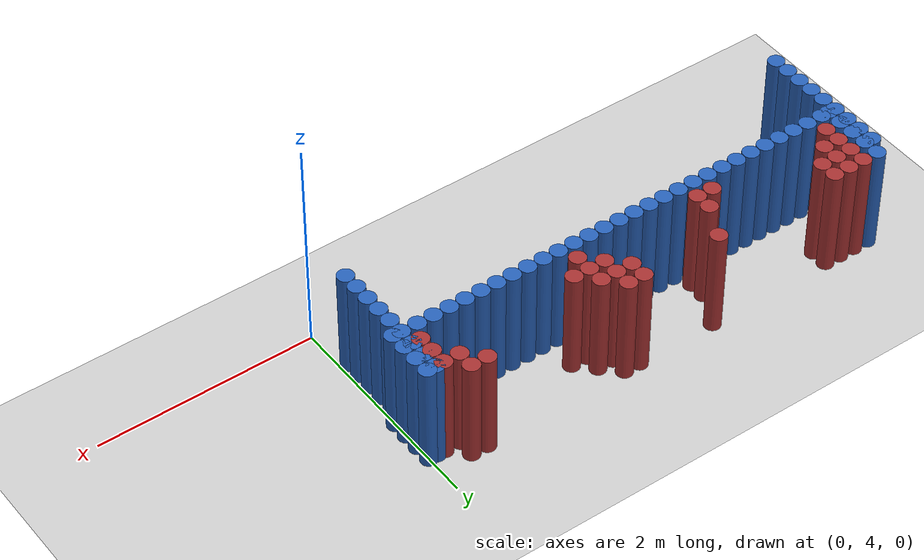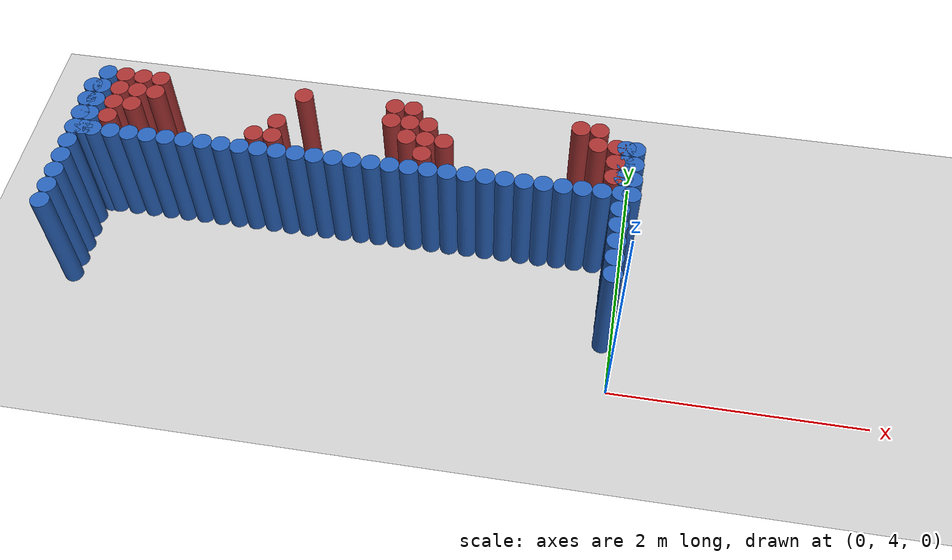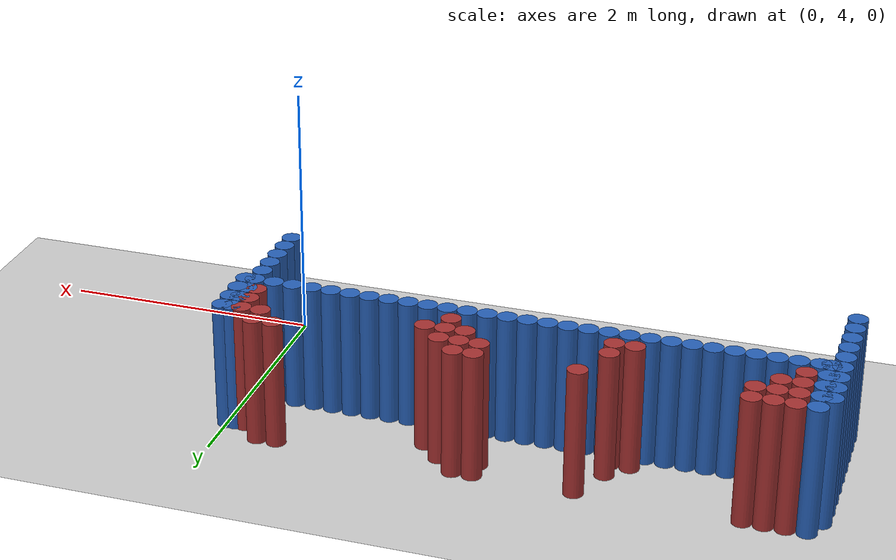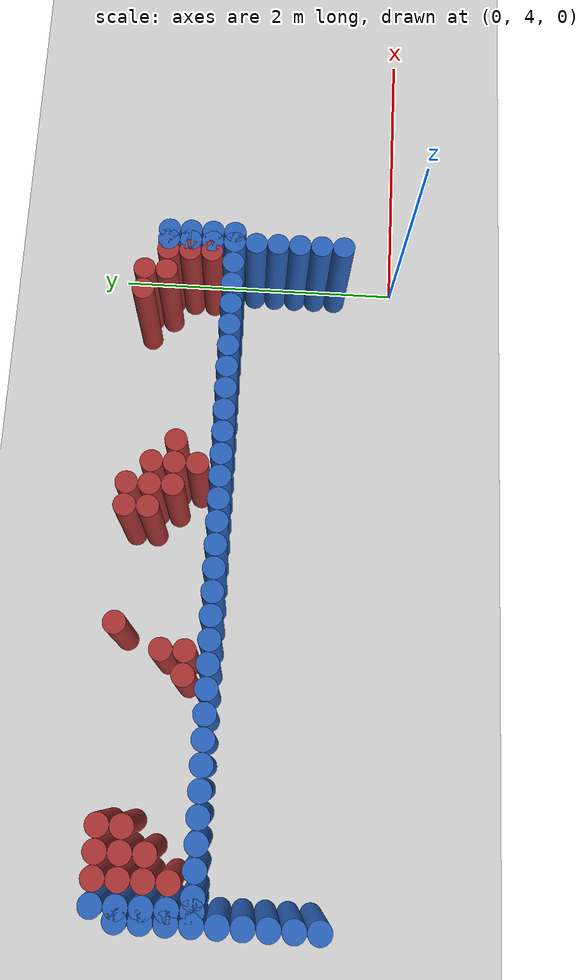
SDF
<sdf version="1.6">
 <world name="barn_world">
  <model name="ground_plane">
   <static>1</static>
   <link name="link">
    <collision name="collision">
     <geometry><plane><normal>0 0 1</normal><size>100 100</size></plane></geometry>
    </collision>
    <visual name="visual">
     <geometry><plane><normal>0 0 1</normal><size>100 100</size></plane></geometry>
     <material>
      <script><uri>file://media/materials/scripts/gazebo.material</uri><name>Gazebo/Grey</name></script>
     </material>
    </visual>
   </link>
  </model>
  <model name="unit_cylinder_86">
   <static>1</static>
   <pose>-0.0750 4.4250 0.5 0 0 0</pose>
   <link name="link">
    <collision name="collision">
     <geometry><cylinder><radius>0.075</radius><length>1</length></cylinder></geometry>
    </collision>
    <visual name="visual">
     <geometry><cylinder><radius>0.075</radius><length>1</length></cylinder></geometry>
     <material><ambient>0.152 0.379 0.72 1</ambient><diffuse>0.152 0.379 0.72 1</diffuse></material>
    </visual>
   </link>
  </model>
  <model name="unit_cylinder_87">
   <static>1</static>
   <pose>-4.4250 4.4250 0.5 0 0 0</pose>
   <link name="link">
    <collision name="collision">
     <geometry><cylinder><radius>0.075</radius><length>1</length></cylinder></geometry>
    </collision>
    <visual name="visual">
     <geometry><cylinder><radius>0.075</radius><length>1</length></cylinder></geometry>
     <material><ambient>0.152 0.379 0.72 1</ambient><diffuse>0.152 0.379 0.72 1</diffuse></material>
    </visual>
   </link>
  </model>
  <model name="unit_cylinder_88">
   <static>1</static>
   <pose>-0.0750 4.5750 0.5 0 0 0</pose>
   <link name="link">
    <collision name="collision">
     <geometry><cylinder><radius>0.075</radius><length>1</length></cylinder></geometry>
    </collision>
    <visual name="visual">
     <geometry><cylinder><radius>0.075</radius><length>1</length></cylinder></geometry>
     <material><ambient>0.152 0.379 0.72 1</ambient><diffuse>0.152 0.379 0.72 1</diffuse></material>
    </visual>
   </link>
  </model>
  <model name="unit_cylinder_89">
   <static>1</static>
   <pose>-4.4250 4.5750 0.5 0 0 0</pose>
   <link name="link">
    <collision name="collision">
     <geometry><cylinder><radius>0.075</radius><length>1</length></cylinder></geometry>
    </collision>
    <visual name="visual">
     <geometry><cylinder><radius>0.075</radius><length>1</length></cylinder></geometry>
     <material><ambient>0.152 0.379 0.72 1</ambient><diffuse>0.152 0.379 0.72 1</diffuse></material>
    </visual>
   </link>
  </model>
  <model name="unit_cylinder_90">
   <static>1</static>
   <pose>-0.0750 4.7250 0.5 0 0 0</pose>
   <link name="link">
    <collision name="collision">
     <geometry><cylinder><radius>0.075</radius><length>1</length></cylinder></geometry>
    </collision>
    <visual name="visual">
     <geometry><cylinder><radius>0.075</radius><length>1</length></cylinder></geometry>
     <material><ambient>0.152 0.379 0.72 1</ambient><diffuse>0.152 0.379 0.72 1</diffuse></material>
    </visual>
   </link>
  </model>
  <model name="unit_cylinder_91">
   <static>1</static>
   <pose>-4.4250 4.7250 0.5 0 0 0</pose>
   <link name="link">
    <collision name="collision">
     <geometry><cylinder><radius>0.075</radius><length>1</length></cylinder></geometry>
    </collision>
    <visual name="visual">
     <geometry><cylinder><radius>0.075</radius><length>1</length></cylinder></geometry>
     <material><ambient>0.152 0.379 0.72 1</ambient><diffuse>0.152 0.379 0.72 1</diffuse></material>
    </visual>
   </link>
  </model>
  <model name="unit_cylinder_92">
   <static>1</static>
   <pose>-0.0750 4.8750 0.5 0 0 0</pose>
   <link name="link">
    <collision name="collision">
     <geometry><cylinder><radius>0.075</radius><length>1</length></cylinder></geometry>
    </collision>
    <visual name="visual">
     <geometry><cylinder><radius>0.075</radius><length>1</length></cylinder></geometry>
     <material><ambient>0.152 0.379 0.72 1</ambient><diffuse>0.152 0.379 0.72 1</diffuse></material>
    </visual>
   </link>
  </model>
  <model name="unit_cylinder_93">
   <static>1</static>
   <pose>-4.4250 4.8750 0.5 0 0 0</pose>
   <link name="link">
    <collision name="collision">
     <geometry><cylinder><radius>0.075</radius><length>1</length></cylinder></geometry>
    </collision>
    <visual name="visual">
     <geometry><cylinder><radius>0.075</radius><length>1</length></cylinder></geometry>
     <material><ambient>0.152 0.379 0.72 1</ambient><diffuse>0.152 0.379 0.72 1</diffuse></material>
    </visual>
   </link>
  </model>
  <model name="unit_cylinder_94">
   <static>1</static>
   <pose>-0.0750 5.0250 0.5 0 0 0</pose>
   <link name="link">
    <collision name="collision">
     <geometry><cylinder><radius>0.075</radius><length>1</length></cylinder></geometry>
    </collision>
    <visual name="visual">
     <geometry><cylinder><radius>0.075</radius><length>1</length></cylinder></geometry>
     <material><ambient>0.152 0.379 0.72 1</ambient><diffuse>0.152 0.379 0.72 1</diffuse></material>
    </visual>
   </link>
  </model>
  <model name="unit_cylinder_95">
   <static>1</static>
   <pose>-4.4250 5.0250 0.5 0 0 0</pose>
   <link name="link">
    <collision name="collision">
     <geometry><cylinder><radius>0.075</radius><length>1</length></cylinder></geometry>
    </collision>
    <visual name="visual">
     <geometry><cylinder><radius>0.075</radius><length>1</length></cylinder></geometry>
     <material><ambient>0.152 0.379 0.72 1</ambient><diffuse>0.152 0.379 0.72 1</diffuse></material>
    </visual>
   </link>
  </model>
  <model name="unit_cylinder_96">
   <static>1</static>
   <pose>-0.0750 5.1750 0.5 0 0 0</pose>
   <link name="link">
    <collision name="collision">
     <geometry><cylinder><radius>0.075</radius><length>1</length></cylinder></geometry>
    </collision>
    <visual name="visual">
     <geometry><cylinder><radius>0.075</radius><length>1</length></cylinder></geometry>
     <material><ambient>0.152 0.379 0.72 1</ambient><diffuse>0.152 0.379 0.72 1</diffuse></material>
    </visual>
   </link>
  </model>
  <model name="unit_cylinder_97">
   <static>1</static>
   <pose>-0.2250 5.1750 0.5 0 0 0</pose>
   <link name="link">
    <collision name="collision">
     <geometry><cylinder><radius>0.075</radius><length>1</length></cylinder></geometry>
    </collision>
    <visual name="visual">
     <geometry><cylinder><radius>0.075</radius><length>1</length></cylinder></geometry>
     <material><ambient>0.152 0.379 0.72 1</ambient><diffuse>0.152 0.379 0.72 1</diffuse></material>
    </visual>
   </link>
  </model>
  <model name="unit_cylinder_98">
   <static>1</static>
   <pose>-0.3750 5.1750 0.5 0 0 0</pose>
   <link name="link">
    <collision name="collision">
     <geometry><cylinder><radius>0.075</radius><length>1</length></cylinder></geometry>
    </collision>
    <visual name="visual">
     <geometry><cylinder><radius>0.075</radius><length>1</length></cylinder></geometry>
     <material><ambient>0.152 0.379 0.72 1</ambient><diffuse>0.152 0.379 0.72 1</diffuse></material>
    </visual>
   </link>
  </model>
  <model name="unit_cylinder_99">
   <static>1</static>
   <pose>-0.5250 5.1750 0.5 0 0 0</pose>
   <link name="link">
    <collision name="collision">
     <geometry><cylinder><radius>0.075</radius><length>1</length></cylinder></geometry>
    </collision>
    <visual name="visual">
     <geometry><cylinder><radius>0.075</radius><length>1</length></cylinder></geometry>
     <material><ambient>0.152 0.379 0.72 1</ambient><diffuse>0.152 0.379 0.72 1</diffuse></material>
    </visual>
   </link>
  </model>
  <model name="unit_cylinder_100">
   <static>1</static>
   <pose>-0.6750 5.1750 0.5 0 0 0</pose>
   <link name="link">
    <collision name="collision">
     <geometry><cylinder><radius>0.075</radius><length>1</length></cylinder></geometry>
    </collision>
    <visual name="visual">
     <geometry><cylinder><radius>0.075</radius><length>1</length></cylinder></geometry>
     <material><ambient>0.152 0.379 0.72 1</ambient><diffuse>0.152 0.379 0.72 1</diffuse></material>
    </visual>
   </link>
  </model>
  <model name="unit_cylinder_101">
   <static>1</static>
   <pose>-0.8250 5.1750 0.5 0 0 0</pose>
   <link name="link">
    <collision name="collision">
     <geometry><cylinder><radius>0.075</radius><length>1</length></cylinder></geometry>
    </collision>
    <visual name="visual">
     <geometry><cylinder><radius>0.075</radius><length>1</length></cylinder></geometry>
     <material><ambient>0.152 0.379 0.72 1</ambient><diffuse>0.152 0.379 0.72 1</diffuse></material>
    </visual>
   </link>
  </model>
  <model name="unit_cylinder_102">
   <static>1</static>
   <pose>-0.9750 5.1750 0.5 0 0 0</pose>
   <link name="link">
    <collision name="collision">
     <geometry><cylinder><radius>0.075</radius><length>1</length></cylinder></geometry>
    </collision>
    <visual name="visual">
     <geometry><cylinder><radius>0.075</radius><length>1</length></cylinder></geometry>
     <material><ambient>0.152 0.379 0.72 1</ambient><diffuse>0.152 0.379 0.72 1</diffuse></material>
    </visual>
   </link>
  </model>
  <model name="unit_cylinder_103">
   <static>1</static>
   <pose>-1.1250 5.1750 0.5 0 0 0</pose>
   <link name="link">
    <collision name="collision">
     <geometry><cylinder><radius>0.075</radius><length>1</length></cylinder></geometry>
    </collision>
    <visual name="visual">
     <geometry><cylinder><radius>0.075</radius><length>1</length></cylinder></geometry>
     <material><ambient>0.152 0.379 0.72 1</ambient><diffuse>0.152 0.379 0.72 1</diffuse></material>
    </visual>
   </link>
  </model>
  <model name="unit_cylinder_104">
   <static>1</static>
   <pose>-1.2750 5.1750 0.5 0 0 0</pose>
   <link name="link">
    <collision name="collision">
     <geometry><cylinder><radius>0.075</radius><length>1</length></cylinder></geometry>
    </collision>
    <visual name="visual">
     <geometry><cylinder><radius>0.075</radius><length>1</length></cylinder></geometry>
     <material><ambient>0.152 0.379 0.72 1</ambient><diffuse>0.152 0.379 0.72 1</diffuse></material>
    </visual>
   </link>
  </model>
  <model name="unit_cylinder_105">
   <static>1</static>
   <pose>-1.4250 5.1750 0.5 0 0 0</pose>
   <link name="link">
    <collision name="collision">
     <geometry><cylinder><radius>0.075</radius><length>1</length></cylinder></geometry>
    </collision>
    <visual name="visual">
     <geometry><cylinder><radius>0.075</radius><length>1</length></cylinder></geometry>
     <material><ambient>0.152 0.379 0.72 1</ambient><diffuse>0.152 0.379 0.72 1</diffuse></material>
    </visual>
   </link>
  </model>
  <model name="unit_cylinder_106">
   <static>1</static>
   <pose>-1.5750 5.1750 0.5 0 0 0</pose>
   <link name="link">
    <collision name="collision">
     <geometry><cylinder><radius>0.075</radius><length>1</length></cylinder></geometry>
    </collision>
    <visual name="visual">
     <geometry><cylinder><radius>0.075</radius><length>1</length></cylinder></geometry>
     <material><ambient>0.152 0.379 0.72 1</ambient><diffuse>0.152 0.379 0.72 1</diffuse></material>
    </visual>
   </link>
  </model>
  <model name="unit_cylinder_107">
   <static>1</static>
   <pose>-1.7250 5.1750 0.5 0 0 0</pose>
   <link name="link">
    <collision name="collision">
     <geometry><cylinder><radius>0.075</radius><length>1</length></cylinder></geometry>
    </collision>
    <visual name="visual">
     <geometry><cylinder><radius>0.075</radius><length>1</length></cylinder></geometry>
     <material><ambient>0.152 0.379 0.72 1</ambient><diffuse>0.152 0.379 0.72 1</diffuse></material>
    </visual>
   </link>
  </model>
  <model name="unit_cylinder_108">
   <static>1</static>
   <pose>-1.8750 5.1750 0.5 0 0 0</pose>
   <link name="link">
    <collision name="collision">
     <geometry><cylinder><radius>0.075</radius><length>1</length></cylinder></geometry>
    </collision>
    <visual name="visual">
     <geometry><cylinder><radius>0.075</radius><length>1</length></cylinder></geometry>
     <material><ambient>0.152 0.379 0.72 1</ambient><diffuse>0.152 0.379 0.72 1</diffuse></material>
    </visual>
   </link>
  </model>
  <model name="unit_cylinder_109">
   <static>1</static>
   <pose>-2.0250 5.1750 0.5 0 0 0</pose>
   <link name="link">
    <collision name="collision">
     <geometry><cylinder><radius>0.075</radius><length>1</length></cylinder></geometry>
    </collision>
    <visual name="visual">
     <geometry><cylinder><radius>0.075</radius><length>1</length></cylinder></geometry>
     <material><ambient>0.152 0.379 0.72 1</ambient><diffuse>0.152 0.379 0.72 1</diffuse></material>
    </visual>
   </link>
  </model>
  <model name="unit_cylinder_110">
   <static>1</static>
   <pose>-2.1750 5.1750 0.5 0 0 0</pose>
   <link name="link">
    <collision name="collision">
     <geometry><cylinder><radius>0.075</radius><length>1</length></cylinder></geometry>
    </collision>
    <visual name="visual">
     <geometry><cylinder><radius>0.075</radius><length>1</length></cylinder></geometry>
     <material><ambient>0.152 0.379 0.72 1</ambient><diffuse>0.152 0.379 0.72 1</diffuse></material>
    </visual>
   </link>
  </model>
  <model name="unit_cylinder_111">
   <static>1</static>
   <pose>-2.3250 5.1750 0.5 0 0 0</pose>
   <link name="link">
    <collision name="collision">
     <geometry><cylinder><radius>0.075</radius><length>1</length></cylinder></geometry>
    </collision>
    <visual name="visual">
     <geometry><cylinder><radius>0.075</radius><length>1</length></cylinder></geometry>
     <material><ambient>0.152 0.379 0.72 1</ambient><diffuse>0.152 0.379 0.72 1</diffuse></material>
    </visual>
   </link>
  </model>
  <model name="unit_cylinder_112">
   <static>1</static>
   <pose>-2.4750 5.1750 0.5 0 0 0</pose>
   <link name="link">
    <collision name="collision">
     <geometry><cylinder><radius>0.075</radius><length>1</length></cylinder></geometry>
    </collision>
    <visual name="visual">
     <geometry><cylinder><radius>0.075</radius><length>1</length></cylinder></geometry>
     <material><ambient>0.152 0.379 0.72 1</ambient><diffuse>0.152 0.379 0.72 1</diffuse></material>
    </visual>
   </link>
  </model>
  <model name="unit_cylinder_113">
   <static>1</static>
   <pose>-2.6250 5.1750 0.5 0 0 0</pose>
   <link name="link">
    <collision name="collision">
     <geometry><cylinder><radius>0.075</radius><length>1</length></cylinder></geometry>
    </collision>
    <visual name="visual">
     <geometry><cylinder><radius>0.075</radius><length>1</length></cylinder></geometry>
     <material><ambient>0.152 0.379 0.72 1</ambient><diffuse>0.152 0.379 0.72 1</diffuse></material>
    </visual>
   </link>
  </model>
  <model name="unit_cylinder_114">
   <static>1</static>
   <pose>-2.7750 5.1750 0.5 0 0 0</pose>
   <link name="link">
    <collision name="collision">
     <geometry><cylinder><radius>0.075</radius><length>1</length></cylinder></geometry>
    </collision>
    <visual name="visual">
     <geometry><cylinder><radius>0.075</radius><length>1</length></cylinder></geometry>
     <material><ambient>0.152 0.379 0.72 1</ambient><diffuse>0.152 0.379 0.72 1</diffuse></material>
    </visual>
   </link>
  </model>
  <model name="unit_cylinder_115">
   <static>1</static>
   <pose>-2.9250 5.1750 0.5 0 0 0</pose>
   <link name="link">
    <collision name="collision">
     <geometry><cylinder><radius>0.075</radius><length>1</length></cylinder></geometry>
    </collision>
    <visual name="visual">
     <geometry><cylinder><radius>0.075</radius><length>1</length></cylinder></geometry>
     <material><ambient>0.152 0.379 0.72 1</ambient><diffuse>0.152 0.379 0.72 1</diffuse></material>
    </visual>
   </link>
  </model>
  <model name="unit_cylinder_116">
   <static>1</static>
   <pose>-3.0750 5.1750 0.5 0 0 0</pose>
   <link name="link">
    <collision name="collision">
     <geometry><cylinder><radius>0.075</radius><length>1</length></cylinder></geometry>
    </collision>
    <visual name="visual">
     <geometry><cylinder><radius>0.075</radius><length>1</length></cylinder></geometry>
     <material><ambient>0.152 0.379 0.72 1</ambient><diffuse>0.152 0.379 0.72 1</diffuse></material>
    </visual>
   </link>
  </model>
  <model name="unit_cylinder_117">
   <static>1</static>
   <pose>-3.2250 5.1750 0.5 0 0 0</pose>
   <link name="link">
    <collision name="collision">
     <geometry><cylinder><radius>0.075</radius><length>1</length></cylinder></geometry>
    </collision>
    <visual name="visual">
     <geometry><cylinder><radius>0.075</radius><length>1</length></cylinder></geometry>
     <material><ambient>0.152 0.379 0.72 1</ambient><diffuse>0.152 0.379 0.72 1</diffuse></material>
    </visual>
   </link>
  </model>
  <model name="unit_cylinder_118">
   <static>1</static>
   <pose>-3.3750 5.1750 0.5 0 0 0</pose>
   <link name="link">
    <collision name="collision">
     <geometry><cylinder><radius>0.075</radius><length>1</length></cylinder></geometry>
    </collision>
    <visual name="visual">
     <geometry><cylinder><radius>0.075</radius><length>1</length></cylinder></geometry>
     <material><ambient>0.152 0.379 0.72 1</ambient><diffuse>0.152 0.379 0.72 1</diffuse></material>
    </visual>
   </link>
  </model>
  <model name="unit_cylinder_119">
   <static>1</static>
   <pose>-3.5250 5.1750 0.5 0 0 0</pose>
   <link name="link">
    <collision name="collision">
     <geometry><cylinder><radius>0.075</radius><length>1</length></cylinder></geometry>
    </collision>
    <visual name="visual">
     <geometry><cylinder><radius>0.075</radius><length>1</length></cylinder></geometry>
     <material><ambient>0.152 0.379 0.72 1</ambient><diffuse>0.152 0.379 0.72 1</diffuse></material>
    </visual>
   </link>
  </model>
  <model name="unit_cylinder_120">
   <static>1</static>
   <pose>-3.6750 5.1750 0.5 0 0 0</pose>
   <link name="link">
    <collision name="collision">
     <geometry><cylinder><radius>0.075</radius><length>1</length></cylinder></geometry>
    </collision>
    <visual name="visual">
     <geometry><cylinder><radius>0.075</radius><length>1</length></cylinder></geometry>
     <material><ambient>0.152 0.379 0.72 1</ambient><diffuse>0.152 0.379 0.72 1</diffuse></material>
    </visual>
   </link>
  </model>
  <model name="unit_cylinder_121">
   <static>1</static>
   <pose>-3.8250 5.1750 0.5 0 0 0</pose>
   <link name="link">
    <collision name="collision">
     <geometry><cylinder><radius>0.075</radius><length>1</length></cylinder></geometry>
    </collision>
    <visual name="visual">
     <geometry><cylinder><radius>0.075</radius><length>1</length></cylinder></geometry>
     <material><ambient>0.152 0.379 0.72 1</ambient><diffuse>0.152 0.379 0.72 1</diffuse></material>
    </visual>
   </link>
  </model>
  <model name="unit_cylinder_122">
   <static>1</static>
   <pose>-3.9750 5.1750 0.5 0 0 0</pose>
   <link name="link">
    <collision name="collision">
     <geometry><cylinder><radius>0.075</radius><length>1</length></cylinder></geometry>
    </collision>
    <visual name="visual">
     <geometry><cylinder><radius>0.075</radius><length>1</length></cylinder></geometry>
     <material><ambient>0.152 0.379 0.72 1</ambient><diffuse>0.152 0.379 0.72 1</diffuse></material>
    </visual>
   </link>
  </model>
  <model name="unit_cylinder_123">
   <static>1</static>
   <pose>-4.1250 5.1750 0.5 0 0 0</pose>
   <link name="link">
    <collision name="collision">
     <geometry><cylinder><radius>0.075</radius><length>1</length></cylinder></geometry>
    </collision>
    <visual name="visual">
     <geometry><cylinder><radius>0.075</radius><length>1</length></cylinder></geometry>
     <material><ambient>0.152 0.379 0.72 1</ambient><diffuse>0.152 0.379 0.72 1</diffuse></material>
    </visual>
   </link>
  </model>
  <model name="unit_cylinder_124">
   <static>1</static>
   <pose>-4.2750 5.1750 0.5 0 0 0</pose>
   <link name="link">
    <collision name="collision">
     <geometry><cylinder><radius>0.075</radius><length>1</length></cylinder></geometry>
    </collision>
    <visual name="visual">
     <geometry><cylinder><radius>0.075</radius><length>1</length></cylinder></geometry>
     <material><ambient>0.152 0.379 0.72 1</ambient><diffuse>0.152 0.379 0.72 1</diffuse></material>
    </visual>
   </link>
  </model>
  <model name="unit_cylinder_125">
   <static>1</static>
   <pose>-4.4250 5.1750 0.5 0 0 0</pose>
   <link name="link">
    <collision name="collision">
     <geometry><cylinder><radius>0.075</radius><length>1</length></cylinder></geometry>
    </collision>
    <visual name="visual">
     <geometry><cylinder><radius>0.075</radius><length>1</length></cylinder></geometry>
     <material><ambient>0.152 0.379 0.72 1</ambient><diffuse>0.152 0.379 0.72 1</diffuse></material>
    </visual>
   </link>
  </model>
  <model name="unit_cylinder_126">
   <static>1</static>
   <pose>-4.3500 5.1750 0.5 0 0 0</pose>
   <link name="link">
    <collision name="collision">
     <geometry><cylinder><radius>0.075</radius><length>1</length></cylinder></geometry>
    </collision>
    <visual name="visual">
     <geometry><cylinder><radius>0.075</radius><length>1</length></cylinder></geometry>
     <material><ambient>0.152 0.379 0.72 1</ambient><diffuse>0.152 0.379 0.72 1</diffuse></material>
    </visual>
   </link>
  </model>
  <model name="unit_cylinder_127">
   <static>1</static>
   <pose>-4.3500 5.3250 0.5 0 0 0</pose>
   <link name="link">
    <collision name="collision">
     <geometry><cylinder><radius>0.075</radius><length>1</length></cylinder></geometry>
    </collision>
    <visual name="visual">
     <geometry><cylinder><radius>0.075</radius><length>1</length></cylinder></geometry>
     <material><ambient>0.152 0.379 0.72 1</ambient><diffuse>0.152 0.379 0.72 1</diffuse></material>
    </visual>
   </link>
  </model>
  <model name="unit_cylinder_128">
   <static>1</static>
   <pose>-4.3500 5.4750 0.5 0 0 0</pose>
   <link name="link">
    <collision name="collision">
     <geometry><cylinder><radius>0.075</radius><length>1</length></cylinder></geometry>
    </collision>
    <visual name="visual">
     <geometry><cylinder><radius>0.075</radius><length>1</length></cylinder></geometry>
     <material><ambient>0.152 0.379 0.72 1</ambient><diffuse>0.152 0.379 0.72 1</diffuse></material>
    </visual>
   </link>
  </model>
  <model name="unit_cylinder_129">
   <static>1</static>
   <pose>-4.3500 5.6250 0.5 0 0 0</pose>
   <link name="link">
    <collision name="collision">
     <geometry><cylinder><radius>0.075</radius><length>1</length></cylinder></geometry>
    </collision>
    <visual name="visual">
     <geometry><cylinder><radius>0.075</radius><length>1</length></cylinder></geometry>
     <material><ambient>0.152 0.379 0.72 1</ambient><diffuse>0.152 0.379 0.72 1</diffuse></material>
    </visual>
   </link>
  </model>
  <model name="unit_cylinder_130">
   <static>1</static>
   <pose>-4.3500 5.7750 0.5 0 0 0</pose>
   <link name="link">
    <collision name="collision">
     <geometry><cylinder><radius>0.075</radius><length>1</length></cylinder></geometry>
    </collision>
    <visual name="visual">
     <geometry><cylinder><radius>0.075</radius><length>1</length></cylinder></geometry>
     <material><ambient>0.152 0.379 0.72 1</ambient><diffuse>0.152 0.379 0.72 1</diffuse></material>
    </visual>
   </link>
  </model>
  <model name="unit_cylinder_156">
   <static>1</static>
   <pose>-4.2000 5.3250 0.5 0 0 0</pose>
   <link name="link">
    <collision name="collision">
     <geometry><cylinder><radius>0.075</radius><length>1</length></cylinder></geometry>
    </collision>
    <visual name="visual">
     <geometry><cylinder><radius>0.075</radius><length>1</length></cylinder></geometry>
     <material><ambient>0.648 0.192 0.192 1</ambient><diffuse>0.648 0.192 0.192 1</diffuse></material>
    </visual>
   </link>
  </model>
  <model name="unit_cylinder_157">
   <static>1</static>
   <pose>-4.2000 5.4750 0.5 0 0 0</pose>
   <link name="link">
    <collision name="collision">
     <geometry><cylinder><radius>0.075</radius><length>1</length></cylinder></geometry>
    </collision>
    <visual name="visual">
     <geometry><cylinder><radius>0.075</radius><length>1</length></cylinder></geometry>
     <material><ambient>0.648 0.192 0.192 1</ambient><diffuse>0.648 0.192 0.192 1</diffuse></material>
    </visual>
   </link>
  </model>
  <model name="unit_cylinder_158">
   <static>1</static>
   <pose>-4.2000 5.6250 0.5 0 0 0</pose>
   <link name="link">
    <collision name="collision">
     <geometry><cylinder><radius>0.075</radius><length>1</length></cylinder></geometry>
    </collision>
    <visual name="visual">
     <geometry><cylinder><radius>0.075</radius><length>1</length></cylinder></geometry>
     <material><ambient>0.648 0.192 0.192 1</ambient><diffuse>0.648 0.192 0.192 1</diffuse></material>
    </visual>
   </link>
  </model>
  <model name="unit_cylinder_159">
   <static>1</static>
   <pose>-4.2000 5.7750 0.5 0 0 0</pose>
   <link name="link">
    <collision name="collision">
     <geometry><cylinder><radius>0.075</radius><length>1</length></cylinder></geometry>
    </collision>
    <visual name="visual">
     <geometry><cylinder><radius>0.075</radius><length>1</length></cylinder></geometry>
     <material><ambient>0.648 0.192 0.192 1</ambient><diffuse>0.648 0.192 0.192 1</diffuse></material>
    </visual>
   </link>
  </model>
  <model name="unit_cylinder_176">
   <static>1</static>
   <pose>-4.0500 5.4750 0.5 0 0 0</pose>
   <link name="link">
    <collision name="collision">
     <geometry><cylinder><radius>0.075</radius><length>1</length></cylinder></geometry>
    </collision>
    <visual name="visual">
     <geometry><cylinder><radius>0.075</radius><length>1</length></cylinder></geometry>
     <material><ambient>0.648 0.192 0.192 1</ambient><diffuse>0.648 0.192 0.192 1</diffuse></material>
    </visual>
   </link>
  </model>
  <model name="unit_cylinder_177">
   <static>1</static>
   <pose>-4.0500 5.6250 0.5 0 0 0</pose>
   <link name="link">
    <collision name="collision">
     <geometry><cylinder><radius>0.075</radius><length>1</length></cylinder></geometry>
    </collision>
    <visual name="visual">
     <geometry><cylinder><radius>0.075</radius><length>1</length></cylinder></geometry>
     <material><ambient>0.648 0.192 0.192 1</ambient><diffuse>0.648 0.192 0.192 1</diffuse></material>
    </visual>
   </link>
  </model>
  <model name="unit_cylinder_178">
   <static>1</static>
   <pose>-4.0500 5.7750 0.5 0 0 0</pose>
   <link name="link">
    <collision name="collision">
     <geometry><cylinder><radius>0.075</radius><length>1</length></cylinder></geometry>
    </collision>
    <visual name="visual">
     <geometry><cylinder><radius>0.075</radius><length>1</length></cylinder></geometry>
     <material><ambient>0.648 0.192 0.192 1</ambient><diffuse>0.648 0.192 0.192 1</diffuse></material>
    </visual>
   </link>
  </model>
  <model name="unit_cylinder_191">
   <static>1</static>
   <pose>-3.9000 5.6250 0.5 0 0 0</pose>
   <link name="link">
    <collision name="collision">
     <geometry><cylinder><radius>0.075</radius><length>1</length></cylinder></geometry>
    </collision>
    <visual name="visual">
     <geometry><cylinder><radius>0.075</radius><length>1</length></cylinder></geometry>
     <material><ambient>0.648 0.192 0.192 1</ambient><diffuse>0.648 0.192 0.192 1</diffuse></material>
    </visual>
   </link>
  </model>
  <model name="unit_cylinder_192">
   <static>1</static>
   <pose>-3.9000 5.7750 0.5 0 0 0</pose>
   <link name="link">
    <collision name="collision">
     <geometry><cylinder><radius>0.075</radius><length>1</length></cylinder></geometry>
    </collision>
    <visual name="visual">
     <geometry><cylinder><radius>0.075</radius><length>1</length></cylinder></geometry>
     <material><ambient>0.648 0.192 0.192 1</ambient><diffuse>0.648 0.192 0.192 1</diffuse></material>
    </visual>
   </link>
  </model>
  <model name="unit_cylinder_212">
   <static>1</static>
   <pose>-3.0000 5.3250 0.5 0 0 0</pose>
   <link name="link">
    <collision name="collision">
     <geometry><cylinder><radius>0.075</radius><length>1</length></cylinder></geometry>
    </collision>
    <visual name="visual">
     <geometry><cylinder><radius>0.075</radius><length>1</length></cylinder></geometry>
     <material><ambient>0.648 0.192 0.192 1</ambient><diffuse>0.648 0.192 0.192 1</diffuse></material>
    </visual>
   </link>
  </model>
  <model name="unit_cylinder_216">
   <static>1</static>
   <pose>-2.8500 5.3250 0.5 0 0 0</pose>
   <link name="link">
    <collision name="collision">
     <geometry><cylinder><radius>0.075</radius><length>1</length></cylinder></geometry>
    </collision>
    <visual name="visual">
     <geometry><cylinder><radius>0.075</radius><length>1</length></cylinder></geometry>
     <material><ambient>0.648 0.192 0.192 1</ambient><diffuse>0.648 0.192 0.192 1</diffuse></material>
    </visual>
   </link>
  </model>
  <model name="unit_cylinder_217">
   <static>1</static>
   <pose>-2.8500 5.4750 0.5 0 0 0</pose>
   <link name="link">
    <collision name="collision">
     <geometry><cylinder><radius>0.075</radius><length>1</length></cylinder></geometry>
    </collision>
    <visual name="visual">
     <geometry><cylinder><radius>0.075</radius><length>1</length></cylinder></geometry>
     <material><ambient>0.648 0.192 0.192 1</ambient><diffuse>0.648 0.192 0.192 1</diffuse></material>
    </visual>
   </link>
  </model>
  <model name="unit_cylinder_223">
   <static>1</static>
   <pose>-2.7000 5.7750 0.5 0 0 0</pose>
   <link name="link">
    <collision name="collision">
     <geometry><cylinder><radius>0.075</radius><length>1</length></cylinder></geometry>
    </collision>
    <visual name="visual">
     <geometry><cylinder><radius>0.075</radius><length>1</length></cylinder></geometry>
     <material><ambient>0.648 0.192 0.192 1</ambient><diffuse>0.648 0.192 0.192 1</diffuse></material>
    </visual>
   </link>
  </model>
  <model name="unit_cylinder_249">
   <static>1</static>
   <pose>-1.9500 5.6250 0.5 0 0 0</pose>
   <link name="link">
    <collision name="collision">
     <geometry><cylinder><radius>0.075</radius><length>1</length></cylinder></geometry>
    </collision>
    <visual name="visual">
     <geometry><cylinder><radius>0.075</radius><length>1</length></cylinder></geometry>
     <material><ambient>0.648 0.192 0.192 1</ambient><diffuse>0.648 0.192 0.192 1</diffuse></material>
    </visual>
   </link>
  </model>
  <model name="unit_cylinder_250">
   <static>1</static>
   <pose>-1.9500 5.7750 0.5 0 0 0</pose>
   <link name="link">
    <collision name="collision">
     <geometry><cylinder><radius>0.075</radius><length>1</length></cylinder></geometry>
    </collision>
    <visual name="visual">
     <geometry><cylinder><radius>0.075</radius><length>1</length></cylinder></geometry>
     <material><ambient>0.648 0.192 0.192 1</ambient><diffuse>0.648 0.192 0.192 1</diffuse></material>
    </visual>
   </link>
  </model>
  <model name="unit_cylinder_251">
   <static>1</static>
   <pose>-1.8000 5.4750 0.5 0 0 0</pose>
   <link name="link">
    <collision name="collision">
     <geometry><cylinder><radius>0.075</radius><length>1</length></cylinder></geometry>
    </collision>
    <visual name="visual">
     <geometry><cylinder><radius>0.075</radius><length>1</length></cylinder></geometry>
     <material><ambient>0.648 0.192 0.192 1</ambient><diffuse>0.648 0.192 0.192 1</diffuse></material>
    </visual>
   </link>
  </model>
  <model name="unit_cylinder_252">
   <static>1</static>
   <pose>-1.8000 5.6250 0.5 0 0 0</pose>
   <link name="link">
    <collision name="collision">
     <geometry><cylinder><radius>0.075</radius><length>1</length></cylinder></geometry>
    </collision>
    <visual name="visual">
     <geometry><cylinder><radius>0.075</radius><length>1</length></cylinder></geometry>
     <material><ambient>0.648 0.192 0.192 1</ambient><diffuse>0.648 0.192 0.192 1</diffuse></material>
    </visual>
   </link>
  </model>
  <model name="unit_cylinder_253">
   <static>1</static>
   <pose>-1.8000 5.7750 0.5 0 0 0</pose>
   <link name="link">
    <collision name="collision">
     <geometry><cylinder><radius>0.075</radius><length>1</length></cylinder></geometry>
    </collision>
    <visual name="visual">
     <geometry><cylinder><radius>0.075</radius><length>1</length></cylinder></geometry>
     <material><ambient>0.648 0.192 0.192 1</ambient><diffuse>0.648 0.192 0.192 1</diffuse></material>
    </visual>
   </link>
  </model>
  <model name="unit_cylinder_254">
   <static>1</static>
   <pose>-1.6500 5.3250 0.5 0 0 0</pose>
   <link name="link">
    <collision name="collision">
     <geometry><cylinder><radius>0.075</radius><length>1</length></cylinder></geometry>
    </collision>
    <visual name="visual">
     <geometry><cylinder><radius>0.075</radius><length>1</length></cylinder></geometry>
     <material><ambient>0.648 0.192 0.192 1</ambient><diffuse>0.648 0.192 0.192 1</diffuse></material>
    </visual>
   </link>
  </model>
  <model name="unit_cylinder_255">
   <static>1</static>
   <pose>-1.6500 5.4750 0.5 0 0 0</pose>
   <link name="link">
    <collision name="collision">
     <geometry><cylinder><radius>0.075</radius><length>1</length></cylinder></geometry>
    </collision>
    <visual name="visual">
     <geometry><cylinder><radius>0.075</radius><length>1</length></cylinder></geometry>
     <material><ambient>0.648 0.192 0.192 1</ambient><diffuse>0.648 0.192 0.192 1</diffuse></material>
    </visual>
   </link>
  </model>
  <model name="unit_cylinder_256">
   <static>1</static>
   <pose>-1.6500 5.6250 0.5 0 0 0</pose>
   <link name="link">
    <collision name="collision">
     <geometry><cylinder><radius>0.075</radius><length>1</length></cylinder></geometry>
    </collision>
    <visual name="visual">
     <geometry><cylinder><radius>0.075</radius><length>1</length></cylinder></geometry>
     <material><ambient>0.648 0.192 0.192 1</ambient><diffuse>0.648 0.192 0.192 1</diffuse></material>
    </visual>
   </link>
  </model>
  <model name="unit_cylinder_257">
   <static>1</static>
   <pose>-1.5000 5.4750 0.5 0 0 0</pose>
   <link name="link">
    <collision name="collision">
     <geometry><cylinder><radius>0.075</radius><length>1</length></cylinder></geometry>
    </collision>
    <visual name="visual">
     <geometry><cylinder><radius>0.075</radius><length>1</length></cylinder></geometry>
     <material><ambient>0.648 0.192 0.192 1</ambient><diffuse>0.648 0.192 0.192 1</diffuse></material>
    </visual>
   </link>
  </model>
  <model name="unit_cylinder_274">
   <static>1</static>
   <pose>-0.4500 5.7750 0.5 0 0 0</pose>
   <link name="link">
    <collision name="collision">
     <geometry><cylinder><radius>0.075</radius><length>1</length></cylinder></geometry>
    </collision>
    <visual name="visual">
     <geometry><cylinder><radius>0.075</radius><length>1</length></cylinder></geometry>
     <material><ambient>0.648 0.192 0.192 1</ambient><diffuse>0.648 0.192 0.192 1</diffuse></material>
    </visual>
   </link>
  </model>
  <model name="unit_cylinder_283">
   <static>1</static>
   <pose>-0.3000 5.6250 0.5 0 0 0</pose>
   <link name="link">
    <collision name="collision">
     <geometry><cylinder><radius>0.075</radius><length>1</length></cylinder></geometry>
    </collision>
    <visual name="visual">
     <geometry><cylinder><radius>0.075</radius><length>1</length></cylinder></geometry>
     <material><ambient>0.648 0.192 0.192 1</ambient><diffuse>0.648 0.192 0.192 1</diffuse></material>
    </visual>
   </link>
  </model>
  <model name="unit_cylinder_284">
   <static>1</static>
   <pose>-0.3000 5.7750 0.5 0 0 0</pose>
   <link name="link">
    <collision name="collision">
     <geometry><cylinder><radius>0.075</radius><length>1</length></cylinder></geometry>
    </collision>
    <visual name="visual">
     <geometry><cylinder><radius>0.075</radius><length>1</length></cylinder></geometry>
     <material><ambient>0.648 0.192 0.192 1</ambient><diffuse>0.648 0.192 0.192 1</diffuse></material>
    </visual>
   </link>
  </model>
  <model name="unit_cylinder_292">
   <static>1</static>
   <pose>-0.1500 5.3250 0.5 0 0 0</pose>
   <link name="link">
    <collision name="collision">
     <geometry><cylinder><radius>0.075</radius><length>1</length></cylinder></geometry>
    </collision>
    <visual name="visual">
     <geometry><cylinder><radius>0.075</radius><length>1</length></cylinder></geometry>
     <material><ambient>0.648 0.192 0.192 1</ambient><diffuse>0.648 0.192 0.192 1</diffuse></material>
    </visual>
   </link>
  </model>
  <model name="unit_cylinder_293">
   <static>1</static>
   <pose>-0.1500 5.4750 0.5 0 0 0</pose>
   <link name="link">
    <collision name="collision">
     <geometry><cylinder><radius>0.075</radius><length>1</length></cylinder></geometry>
    </collision>
    <visual name="visual">
     <geometry><cylinder><radius>0.075</radius><length>1</length></cylinder></geometry>
     <material><ambient>0.648 0.192 0.192 1</ambient><diffuse>0.648 0.192 0.192 1</diffuse></material>
    </visual>
   </link>
  </model>
  <model name="unit_cylinder_294">
   <static>1</static>
   <pose>-0.1500 5.6250 0.5 0 0 0</pose>
   <link name="link">
    <collision name="collision">
     <geometry><cylinder><radius>0.075</radius><length>1</length></cylinder></geometry>
    </collision>
    <visual name="visual">
     <geometry><cylinder><radius>0.075</radius><length>1</length></cylinder></geometry>
     <material><ambient>0.648 0.192 0.192 1</ambient><diffuse>0.648 0.192 0.192 1</diffuse></material>
    </visual>
   </link>
  </model>
  <model name="unit_cylinder_308">
   <static>1</static>
   <pose>0.0000 5.1750 0.5 0 0 0</pose>
   <link name="link">
    <collision name="collision">
     <geometry><cylinder><radius>0.075</radius><length>1</length></cylinder></geometry>
    </collision>
    <visual name="visual">
     <geometry><cylinder><radius>0.075</radius><length>1</length></cylinder></geometry>
     <material><ambient>0.152 0.379 0.72 1</ambient><diffuse>0.152 0.379 0.72 1</diffuse></material>
    </visual>
   </link>
  </model>
  <model name="unit_cylinder_309">
   <static>1</static>
   <pose>0.0000 5.3250 0.5 0 0 0</pose>
   <link name="link">
    <collision name="collision">
     <geometry><cylinder><radius>0.075</radius><length>1</length></cylinder></geometry>
    </collision>
    <visual name="visual">
     <geometry><cylinder><radius>0.075</radius><length>1</length></cylinder></geometry>
     <material><ambient>0.152 0.379 0.72 1</ambient><diffuse>0.152 0.379 0.72 1</diffuse></material>
    </visual>
   </link>
  </model>
  <model name="unit_cylinder_310">
   <static>1</static>
   <pose>0.0000 5.4750 0.5 0 0 0</pose>
   <link name="link">
    <collision name="collision">
     <geometry><cylinder><radius>0.075</radius><length>1</length></cylinder></geometry>
    </collision>
    <visual name="visual">
     <geometry><cylinder><radius>0.075</radius><length>1</length></cylinder></geometry>
     <material><ambient>0.152 0.379 0.72 1</ambient><diffuse>0.152 0.379 0.72 1</diffuse></material>
    </visual>
   </link>
  </model>
  <model name="unit_cylinder_311">
   <static>1</static>
   <pose>0.0000 5.6250 0.5 0 0 0</pose>
   <link name="link">
    <collision name="collision">
     <geometry><cylinder><radius>0.075</radius><length>1</length></cylinder></geometry>
    </collision>
    <visual name="visual">
     <geometry><cylinder><radius>0.075</radius><length>1</length></cylinder></geometry>
     <material><ambient>0.152 0.379 0.72 1</ambient><diffuse>0.152 0.379 0.72 1</diffuse></material>
    </visual>
   </link>
  </model>
  <model name="unit_cylinder_368">
   <static>1</static>
   <pose>-0.0750 5.1750 0.5 0 0 0</pose>
   <link name="link">
    <collision name="collision">
     <geometry><cylinder><radius>0.075</radius><length>1</length></cylinder></geometry>
    </collision>
    <visual name="visual">
     <geometry><cylinder><radius>0.075</radius><length>1</length></cylinder></geometry>
     <material><ambient>0.152 0.379 0.72 1</ambient><diffuse>0.152 0.379 0.72 1</diffuse></material>
    </visual>
   </link>
  </model>
  <model name="unit_cylinder_369">
   <static>1</static>
   <pose>-4.4250 5.1750 0.5 0 0 0</pose>
   <link name="link">
    <collision name="collision">
     <geometry><cylinder><radius>0.075</radius><length>1</length></cylinder></geometry>
    </collision>
    <visual name="visual">
     <geometry><cylinder><radius>0.075</radius><length>1</length></cylinder></geometry>
     <material><ambient>0.152 0.379 0.72 1</ambient><diffuse>0.152 0.379 0.72 1</diffuse></material>
    </visual>
   </link>
  </model>
  <model name="unit_cylinder_370">
   <static>1</static>
   <pose>-0.0750 5.3250 0.5 0 0 0</pose>
   <link name="link">
    <collision name="collision">
     <geometry><cylinder><radius>0.075</radius><length>1</length></cylinder></geometry>
    </collision>
    <visual name="visual">
     <geometry><cylinder><radius>0.075</radius><length>1</length></cylinder></geometry>
     <material><ambient>0.152 0.379 0.72 1</ambient><diffuse>0.152 0.379 0.72 1</diffuse></material>
    </visual>
   </link>
  </model>
  <model name="unit_cylinder_371">
   <static>1</static>
   <pose>-4.4250 5.3250 0.5 0 0 0</pose>
   <link name="link">
    <collision name="collision">
     <geometry><cylinder><radius>0.075</radius><length>1</length></cylinder></geometry>
    </collision>
    <visual name="visual">
     <geometry><cylinder><radius>0.075</radius><length>1</length></cylinder></geometry>
     <material><ambient>0.152 0.379 0.72 1</ambient><diffuse>0.152 0.379 0.72 1</diffuse></material>
    </visual>
   </link>
  </model>
  <model name="unit_cylinder_372">
   <static>1</static>
   <pose>-0.0750 5.4750 0.5 0 0 0</pose>
   <link name="link">
    <collision name="collision">
     <geometry><cylinder><radius>0.075</radius><length>1</length></cylinder></geometry>
    </collision>
    <visual name="visual">
     <geometry><cylinder><radius>0.075</radius><length>1</length></cylinder></geometry>
     <material><ambient>0.152 0.379 0.72 1</ambient><diffuse>0.152 0.379 0.72 1</diffuse></material>
    </visual>
   </link>
  </model>
  <model name="unit_cylinder_373">
   <static>1</static>
   <pose>-4.4250 5.4750 0.5 0 0 0</pose>
   <link name="link">
    <collision name="collision">
     <geometry><cylinder><radius>0.075</radius><length>1</length></cylinder></geometry>
    </collision>
    <visual name="visual">
     <geometry><cylinder><radius>0.075</radius><length>1</length></cylinder></geometry>
     <material><ambient>0.152 0.379 0.72 1</ambient><diffuse>0.152 0.379 0.72 1</diffuse></material>
    </visual>
   </link>
  </model>
  <model name="unit_cylinder_374">
   <static>1</static>
   <pose>-0.0750 5.6250 0.5 0 0 0</pose>
   <link name="link">
    <collision name="collision">
     <geometry><cylinder><radius>0.075</radius><length>1</length></cylinder></geometry>
    </collision>
    <visual name="visual">
     <geometry><cylinder><radius>0.075</radius><length>1</length></cylinder></geometry>
     <material><ambient>0.152 0.379 0.72 1</ambient><diffuse>0.152 0.379 0.72 1</diffuse></material>
    </visual>
   </link>
  </model>
  <model name="unit_cylinder_375">
   <static>1</static>
   <pose>-4.4250 5.6250 0.5 0 0 0</pose>
   <link name="link">
    <collision name="collision">
     <geometry><cylinder><radius>0.075</radius><length>1</length></cylinder></geometry>
    </collision>
    <visual name="visual">
     <geometry><cylinder><radius>0.075</radius><length>1</length></cylinder></geometry>
     <material><ambient>0.152 0.379 0.72 1</ambient><diffuse>0.152 0.379 0.72 1</diffuse></material>
    </visual>
   </link>
  </model>
 </world>
</sdf>
